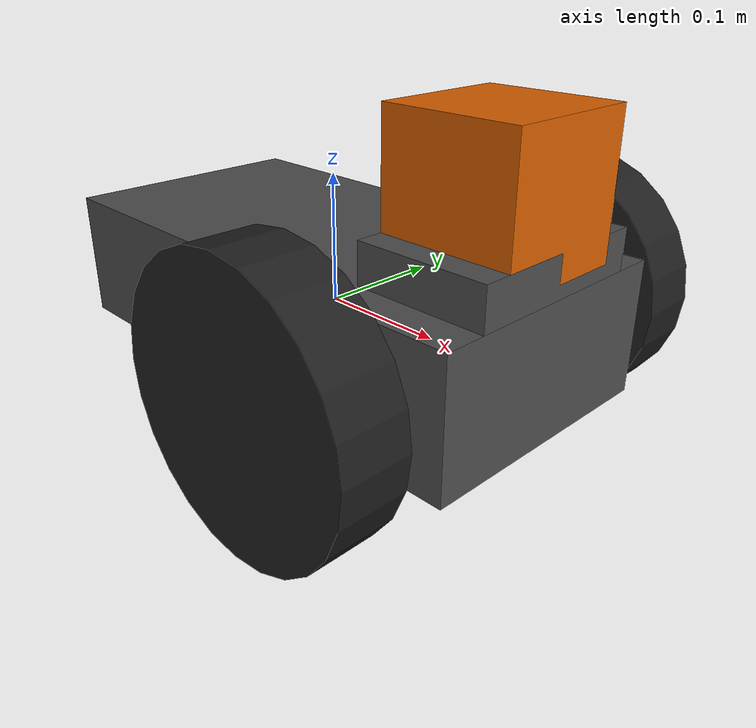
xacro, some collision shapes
<?xml version="1.0" ?>
<robot name="try" xmlns:xacro="http://ros.org/wiki/xacro">
  <xacro:include filename="$(find mybot_description)/urdf/common_properties.xacro"/>
  <xacro:include filename="$(find mybot_description)/urdf/try.gazebo.xacro"/>

  <xacro:property name="r200_cam_rgb_px" value="0.005"/>
  <xacro:property name="r200_cam_rgb_py" value="0.018"/>
  <xacro:property name="r200_cam_rgb_pz" value="0.013"/>
  <xacro:property name="r200_cam_depth_offset" value="0.01"/>

  <link name="base_footprint"/>

  <joint name="base_joint" type="fixed">
    <parent link="base_footprint"/>
    <child link="base_link" />
    <origin xyz="0 0 0.010" rpy="0 0 0"/>
  </joint>

  <link name="base_link">
    <collision name='collision'>
      <geometry>
        <box size=".4 .2 .1"/>
      </geometry>
    </collision>

    <visual name='chassis_visual'>
      <origin xyz="0 0 0" rpy=" 0 0 0"/>
      <geometry>
        <box size=".4 .2 .1"/>
      </geometry>
    </visual>

    <collision name='collision_base'>
      <origin xyz="0.15 0 0.065" rpy=" 0 0 0"/>
      <geometry>
        <box size=".1 .14 .03"/>
      </geometry>
    </collision>

    <visual name='base_visual'>
      <origin xyz="0.15 0 0.065" rpy=" 0 0 0"/>
      <geometry>
        <box size=".1 .14 .03"/>
      </geometry>
    </visual>

    <collision name='caster_collision'>
      <origin xyz="-0.15 0 -0.05" rpy=" 0 0 0"/>
      <geometry>
        <sphere radius="0.05"/>
      </geometry>
      <surface>
        <friction>
          <ode>
            <mu>0</mu>
            <mu2>0</mu2>
            <slip1>1.0</slip1>
            <slip2>1.0</slip2>
          </ode>
        </friction>
      </surface>
    </collision>

    <visual name='caster_visual'>
      <origin xyz="-0.15 0 -0.05" rpy=" 0 0 0"/>
      <geometry>
        <sphere radius="0.05"/>
      </geometry>
    </visual>

    <inertial>
      <origin xyz="0 0 0" rpy="0 0 0"/>
      <mass value="1.3729096e+00"/>
      <inertia ixx="8.7002718e-03" ixy="-4.7576583e-05" ixz="1.1160499e-04"
               iyy="8.6195418e-03" iyz="-3.5422299e-06"
               izz="1.4612727e-02" />
    </inertial>
  </link>

  <joint name="wheel_left_joint" type="continuous">
    <origin xyz="0.1 0.15 0" rpy="0 0 0"/>
    <child link="wheel_left_link"/>
    <parent link="base_link"/>
    <axis xyz="0 1 0" rpy="0 0 0"/>
  </joint>

  <link name="wheel_left_link">
    <collision name="collision">
      <origin xyz="0 0 0" rpy="0 1.5707 1.5707"/>
      <geometry>
        <cylinder radius="0.1" length="0.05"/>
      </geometry>
    </collision>

    <visual name="left_wheel_visual">
      <origin xyz="0 0 0" rpy="0 1.5707 1.5707"/>
      <geometry>
        <cylinder radius="0.1" length="0.05"/>
      </geometry>
    </visual>

    <inertial>
      <origin xyz="0 0 0" />
      <mass value="2.8498940e-02" />
      <inertia ixx="1.1175580e-05" ixy="-4.2369783e-11" ixz="-5.9381719e-09"
               iyy="1.1192413e-05" iyz="-1.4400107e-11"
               izz="2.0712558e-05" />
      </inertial>
  </link>

  <joint name="wheel_right_joint" type="continuous">
    <origin xyz="0.1 -0.15 0" rpy="0 0 0"/>
    <child link="wheel_right_link"/>
    <parent link="base_link"/>
    <axis xyz="0 1 0" rpy="0 0 0"/>
  </joint>

  <link name="wheel_right_link">
    <collision name="collision">
      <origin xyz="0 0 0" rpy="0 1.5707 1.5707"/>
      <geometry>
        <cylinder radius="0.1" length="0.05"/>
      </geometry>
    </collision>

    <visual name="right_wheel_visual">
      <origin xyz="0 0 0" rpy="0 1.5707 1.5707"/>
      <geometry>
        <cylinder radius="0.1" length="0.05"/>
      </geometry>
    </visual>

    <inertial>
      <origin xyz="0 0 0" />
      <mass value="2.8498940e-02" />
      <inertia ixx="1.1175580e-05" ixy="-4.2369783e-11" ixz="-5.9381719e-09"
               iyy="1.1192413e-05" iyz="-1.4400107e-11"
               izz="2.0712558e-05" />
      </inertial>
  </link>

  <joint name="imu_joint" type="fixed">
    <parent link="base_link"/>
    <child link="imu_link"/>
    <origin xyz="0.0 0 0.068" rpy="0 0 0"/>
  </joint>

  <link name="imu_link"/>

  <joint name="camera_joint" type="fixed">
    <axis xyz="0 0 0" />
    <origin xyz=".15 0 .11" rpy="0 0 0"/>
    <parent link="base_link"/>
    <child link="camera_link"/>
  </joint>

  <link name="camera_link">
    <collision>
      <origin xyz="0 0 0" rpy="0 0 1.57"/>
      <geometry>
    	<box size="0.1 0.1 0.1"/>
      </geometry>
    </collision>

    <visual>
      <origin xyz="0 0 0" rpy="0 0 1.57"/>
      <geometry>
        <mesh filename="package://mybot_description/meshes/kinect.dae"/>
      </geometry>
    </visual>

    <!-- This inertial field needs doesn't contain reliable data!! -->
  </link>

  <joint name="camera_rgb_joint" type="fixed">
    <origin xyz="${r200_cam_rgb_px} ${r200_cam_rgb_py} ${r200_cam_rgb_pz}" rpy="0 0 0"/>
    <parent link="camera_link"/>
    <child link="camera_rgb_frame"/>
  </joint>
  <link name="camera_rgb_frame"/>

  <joint name="camera_rgb_optical_joint" type="fixed">
    <origin xyz="0 0 0" rpy="-1.57 0 -1.57"/>
    <parent link="camera_rgb_frame"/>
    <child link="camera_rgb_optical_frame"/>
  </joint>
  <link name="camera_rgb_optical_frame"/>

  <joint name="camera_depth_joint" type="fixed">
    <origin xyz="${r200_cam_rgb_px} ${r200_cam_rgb_py + r200_cam_depth_offset} ${r200_cam_rgb_pz}" rpy="0 0 0"/>
    <parent link="camera_link"/>
    <child link="camera_depth_frame"/>
  </joint>
  <link name="camera_depth_frame"/>

  <joint name="camera_depth_optical_joint" type="fixed">
    <origin xyz="0 0 0" rpy="-1.57 0 -1.57"/>
    <parent link="camera_depth_frame"/>
    <child link="camera_depth_optical_frame"/>
  </joint>
  <link name="camera_depth_optical_frame"/>

</robot>
